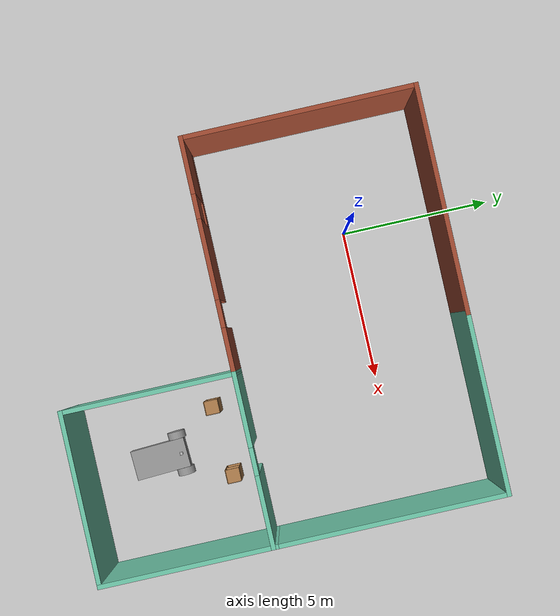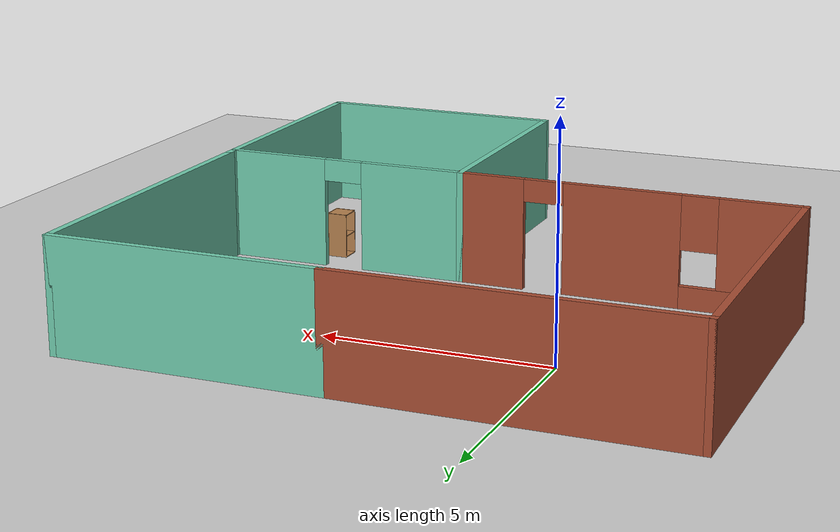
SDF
<sdf version="1.6">
 <world name="default">
  <model name="ground_plane">
   <static>1</static>
   <link name="link">
    <collision name="collision">
     <geometry><plane><normal>0 0 1</normal><size>100 100</size></plane></geometry>
     <surface>
      <contact><collide_bitmask>65535</collide_bitmask></contact>
      <friction><ode><mu>100</mu><mu2>50</mu2></ode></friction>
     </surface>
    </collision>
    <visual name="visual">
     <cast_shadows>0</cast_shadows>
     <geometry><plane><normal>0 0 1</normal><size>100 100</size></plane></geometry>
     <material>
      <script><uri>file://media/materials/scripts/gazebo.material</uri><name>Gazebo/Grey</name></script>
     </material>
    </visual>
   </link>
  </model>
  <model name="Building">
   <link name="Wall_0">
    <pose>-2.925 6.6 0 0 -0 0</pose>
    <visual name="Wall_0_Visual">
     <pose>0 0 1.25 0 -0 0</pose>
     <geometry><box><size>7.5 0.15 2.5</size></box></geometry>
     <material>
      <script><uri>file://media/materials/scripts/gazebo.material</uri><name>Gazebo/Bricks</name></script>
      <ambient>1 1 1 1</ambient>
     </material>
     <meta><layer>0</layer></meta>
    </visual>
    <collision name="Wall_0_Collision">
     <pose>0 0 1.25 0 -0 0</pose>
     <geometry><box><size>7.5 0.15 2.5</size></box></geometry>
     <surface>
      <friction>
       <ode><mu>1</mu><mu2>1</mu2><fdir1>0 0 0</fdir1><slip1>0</slip1><slip2>0</slip2></ode>
       <torsional>
        <coefficient>1</coefficient>
        <patch_radius>0</patch_radius>
        <surface_radius>0</surface_radius>
        <use_patch_radius>1</use_patch_radius>
        <ode><slip>0</slip></ode>
       </torsional>
      </friction>
      <bounce><restitution_coefficient>0</restitution_coefficient><threshold>1e+06</threshold></bounce>
      <contact>
       <collide_without_contact>0</collide_without_contact>
       <collide_without_contact_bitmask>1</collide_without_contact_bitmask>
       <collide_bitmask>1</collide_bitmask>
       <ode>
        <soft_cfm>0</soft_cfm>
        <soft_erp>0.2</soft_erp>
        <kp>1e+13</kp>
        <kd>1</kd>
        <max_vel>0.01</max_vel>
        <min_depth>0</min_depth>
       </ode>
       <bullet>
        <split_impulse>1</split_impulse>
        <split_impulse_penetration_threshold>-0.01</split_impulse_penetration_threshold>
        <soft_cfm>0</soft_cfm>
        <soft_erp>0.2</soft_erp>
        <kp>1e+13</kp>
        <kd>1</kd>
       </bullet>
      </contact>
     </surface>
    </collision>
   </link>
   <link name="Wall_1">
    <pose>3.675 6.6 0 0 -0 0</pose>
    <visual name="Wall_1_Visual">
     <pose>0 0 1.25 0 -0 0</pose>
     <geometry><box><size>6 0.15 2.5</size></box></geometry>
     <material>
      <script><uri>file://media/materials/scripts/gazebo.material</uri><name>Gazebo/Grey</name></script>
      <ambient>0.435294 0.796078 0.67451 1</ambient>
     </material>
     <meta><layer>0</layer></meta>
    </visual>
    <collision name="Wall_1_Collision">
     <pose>0 0 1.25 0 -0 0</pose>
     <geometry><box><size>6 0.15 2.5</size></box></geometry>
     <surface>
      <friction>
       <ode><mu>1</mu><mu2>1</mu2><fdir1>0 0 0</fdir1><slip1>0</slip1><slip2>0</slip2></ode>
       <torsional>
        <coefficient>1</coefficient>
        <patch_radius>0</patch_radius>
        <surface_radius>0</surface_radius>
        <use_patch_radius>1</use_patch_radius>
        <ode><slip>0</slip></ode>
       </torsional>
      </friction>
      <bounce><restitution_coefficient>0</restitution_coefficient><threshold>1e+06</threshold></bounce>
      <contact>
       <collide_without_contact>0</collide_without_contact>
       <collide_without_contact_bitmask>1</collide_without_contact_bitmask>
       <collide_bitmask>1</collide_bitmask>
       <ode>
        <soft_cfm>0</soft_cfm>
        <soft_erp>0.2</soft_erp>
        <kp>1e+13</kp>
        <kd>1</kd>
        <max_vel>0.01</max_vel>
        <min_depth>0</min_depth>
       </ode>
       <bullet>
        <split_impulse>1</split_impulse>
        <split_impulse_penetration_threshold>-0.01</split_impulse_penetration_threshold>
        <soft_cfm>0</soft_cfm>
        <soft_erp>0.2</soft_erp>
        <kp>1e+13</kp>
        <kd>1</kd>
       </bullet>
      </contact>
     </surface>
    </collision>
   </link>
   <link name="Wall_14">
    <pose>3.8 -1 0 0 -0 0</pose>
    <visual name="Wall_14_Visual_2">
     <pose>0.031268 0 2.25 0 -0 0</pose>
     <geometry><box><size>0.9 0.15 0.5</size></box></geometry>
     <material>
      <script><uri>file://media/materials/scripts/gazebo.material</uri><name>Gazebo/Grey</name></script>
      <ambient>0.435294 0.796078 0.67451 1</ambient>
     </material>
     <meta><layer>0</layer></meta>
    </visual>
    <visual name="Wall_14_Visual_0">
     <pose>-1.64687 0 1.25 0 -0 0</pose>
     <geometry><box><size>2.45627 0.15 2.5</size></box></geometry>
     <material>
      <script><uri>file://media/materials/scripts/gazebo.material</uri><name>Gazebo/Grey</name></script>
      <ambient>0.435294 0.796078 0.67451 1</ambient>
     </material>
     <meta><layer>0</layer></meta>
    </visual>
    <visual name="Wall_14_Visual_1">
     <pose>1.67813 0 1.25 0 -0 0</pose>
     <geometry><box><size>2.39373 0.15 2.5</size></box></geometry>
     <material>
      <script><uri>file://media/materials/scripts/gazebo.material</uri><name>Gazebo/Grey</name></script>
      <ambient>0.435294 0.796078 0.67451 1</ambient>
     </material>
     <meta><layer>0</layer></meta>
    </visual>
    <collision name="Wall_14_Collision_0">
     <pose>-1.64687 0 1.25 0 -0 0</pose>
     <geometry><box><size>2.45627 0.15 2.5</size></box></geometry>
     <surface>
      <friction>
       <ode><mu>1</mu><mu2>1</mu2><fdir1>0 0 0</fdir1><slip1>0</slip1><slip2>0</slip2></ode>
       <torsional>
        <coefficient>1</coefficient>
        <patch_radius>0</patch_radius>
        <surface_radius>0</surface_radius>
        <use_patch_radius>1</use_patch_radius>
        <ode><slip>0</slip></ode>
       </torsional>
      </friction>
      <bounce><restitution_coefficient>0</restitution_coefficient><threshold>1e+06</threshold></bounce>
      <contact>
       <collide_without_contact>0</collide_without_contact>
       <collide_without_contact_bitmask>1</collide_without_contact_bitmask>
       <collide_bitmask>1</collide_bitmask>
       <ode>
        <soft_cfm>0</soft_cfm>
        <soft_erp>0.2</soft_erp>
        <kp>1e+13</kp>
        <kd>1</kd>
        <max_vel>0.01</max_vel>
        <min_depth>0</min_depth>
       </ode>
       <bullet>
        <split_impulse>1</split_impulse>
        <split_impulse_penetration_threshold>-0.01</split_impulse_penetration_threshold>
        <soft_cfm>0</soft_cfm>
        <soft_erp>0.2</soft_erp>
        <kp>1e+13</kp>
        <kd>1</kd>
       </bullet>
      </contact>
     </surface>
    </collision>
    <collision name="Wall_14_Collision_1">
     <pose>1.67813 0 1.25 0 -0 0</pose>
     <geometry><box><size>2.39373 0.15 2.5</size></box></geometry>
     <surface>
      <friction>
       <ode><mu>1</mu><mu2>1</mu2><fdir1>0 0 0</fdir1><slip1>0</slip1><slip2>0</slip2></ode>
       <torsional>
        <coefficient>1</coefficient>
        <patch_radius>0</patch_radius>
        <surface_radius>0</surface_radius>
        <use_patch_radius>1</use_patch_radius>
        <ode><slip>0</slip></ode>
       </torsional>
      </friction>
      <bounce><restitution_coefficient>0</restitution_coefficient><threshold>1e+06</threshold></bounce>
      <contact>
       <collide_without_contact>0</collide_without_contact>
       <collide_without_contact_bitmask>1</collide_without_contact_bitmask>
       <collide_bitmask>1</collide_bitmask>
       <ode>
        <soft_cfm>0</soft_cfm>
        <soft_erp>0.2</soft_erp>
        <kp>1e+13</kp>
        <kd>1</kd>
        <max_vel>0.01</max_vel>
        <min_depth>0</min_depth>
       </ode>
       <bullet>
        <split_impulse>1</split_impulse>
        <split_impulse_penetration_threshold>-0.01</split_impulse_penetration_threshold>
        <soft_cfm>0</soft_cfm>
        <soft_erp>0.2</soft_erp>
        <kp>1e+13</kp>
        <kd>1</kd>
       </bullet>
      </contact>
     </surface>
    </collision>
    <collision name="Wall_14_Collision_2">
     <pose>0.031268 0 2.25 0 -0 0</pose>
     <geometry><box><size>0.9 0.15 0.5</size></box></geometry>
     <surface>
      <friction>
       <ode><mu>1</mu><mu2>1</mu2><fdir1>0 0 0</fdir1><slip1>0</slip1><slip2>0</slip2></ode>
       <torsional>
        <coefficient>1</coefficient>
        <patch_radius>0</patch_radius>
        <surface_radius>0</surface_radius>
        <use_patch_radius>1</use_patch_radius>
        <ode><slip>0</slip></ode>
       </torsional>
      </friction>
      <bounce><restitution_coefficient>0</restitution_coefficient><threshold>1e+06</threshold></bounce>
      <contact>
       <collide_without_contact>0</collide_without_contact>
       <collide_without_contact_bitmask>1</collide_without_contact_bitmask>
       <collide_bitmask>1</collide_bitmask>
       <ode>
        <soft_cfm>0</soft_cfm>
        <soft_erp>0.2</soft_erp>
        <kp>1e+13</kp>
        <kd>1</kd>
        <max_vel>0.01</max_vel>
        <min_depth>0</min_depth>
       </ode>
       <bullet>
        <split_impulse>1</split_impulse>
        <split_impulse_penetration_threshold>-0.01</split_impulse_penetration_threshold>
        <soft_cfm>0</soft_cfm>
        <soft_erp>0.2</soft_erp>
        <kp>1e+13</kp>
        <kd>1</kd>
       </bullet>
      </contact>
     </surface>
    </collision>
   </link>
   <link name="Wall_2">
    <pose>6.6 2.925 0 0 0 -1.5708</pose>
    <visual name="Wall_2_Visual">
     <pose>0 0 1.25 0 -0 0</pose>
     <geometry><box><size>7.5 0.15 2.5</size></box></geometry>
     <material>
      <script><uri>file://media/materials/scripts/gazebo.material</uri><name>Gazebo/Grey</name></script>
      <ambient>0.435294 0.796078 0.67451 1</ambient>
     </material>
     <meta><layer>0</layer></meta>
    </visual>
    <collision name="Wall_2_Collision">
     <pose>0 0 1.25 0 -0 0</pose>
     <geometry><box><size>7.5 0.15 2.5</size></box></geometry>
     <surface>
      <friction>
       <ode><mu>1</mu><mu2>1</mu2><fdir1>0 0 0</fdir1><slip1>0</slip1><slip2>0</slip2></ode>
       <torsional>
        <coefficient>1</coefficient>
        <patch_radius>0</patch_radius>
        <surface_radius>0</surface_radius>
        <use_patch_radius>1</use_patch_radius>
        <ode><slip>0</slip></ode>
       </torsional>
      </friction>
      <bounce><restitution_coefficient>0</restitution_coefficient><threshold>1e+06</threshold></bounce>
      <contact>
       <collide_without_contact>0</collide_without_contact>
       <collide_without_contact_bitmask>1</collide_without_contact_bitmask>
       <collide_bitmask>1</collide_bitmask>
       <ode>
        <soft_cfm>0</soft_cfm>
        <soft_erp>0.2</soft_erp>
        <kp>1e+13</kp>
        <kd>1</kd>
        <max_vel>0.01</max_vel>
        <min_depth>0</min_depth>
       </ode>
       <bullet>
        <split_impulse>1</split_impulse>
        <split_impulse_penetration_threshold>-0.01</split_impulse_penetration_threshold>
        <soft_cfm>0</soft_cfm>
        <soft_erp>0.2</soft_erp>
        <kp>1e+13</kp>
        <kd>1</kd>
       </bullet>
      </contact>
     </surface>
    </collision>
   </link>
   <link name="Wall_3">
    <pose>6.6 -3.675 0 0 0 -1.5708</pose>
    <visual name="Wall_3_Visual">
     <pose>0 0 1.25 0 -0 0</pose>
     <geometry><box><size>6 0.15 2.5</size></box></geometry>
     <material>
      <script><uri>file://media/materials/scripts/gazebo.material</uri><name>Gazebo/Grey</name></script>
      <ambient>0.435294 0.796078 0.67451 1</ambient>
     </material>
     <meta><layer>0</layer></meta>
    </visual>
    <collision name="Wall_3_Collision">
     <pose>0 0 1.25 0 -0 0</pose>
     <geometry><box><size>6 0.15 2.5</size></box></geometry>
     <surface>
      <friction>
       <ode><mu>1</mu><mu2>1</mu2><fdir1>0 0 0</fdir1><slip1>0</slip1><slip2>0</slip2></ode>
       <torsional>
        <coefficient>1</coefficient>
        <patch_radius>0</patch_radius>
        <surface_radius>0</surface_radius>
        <use_patch_radius>1</use_patch_radius>
        <ode><slip>0</slip></ode>
       </torsional>
      </friction>
      <bounce><restitution_coefficient>0</restitution_coefficient><threshold>1e+06</threshold></bounce>
      <contact>
       <collide_without_contact>0</collide_without_contact>
       <collide_without_contact_bitmask>1</collide_without_contact_bitmask>
       <collide_bitmask>1</collide_bitmask>
       <ode>
        <soft_cfm>0</soft_cfm>
        <soft_erp>0.2</soft_erp>
        <kp>1e+13</kp>
        <kd>1</kd>
        <max_vel>0.01</max_vel>
        <min_depth>0</min_depth>
       </ode>
       <bullet>
        <split_impulse>1</split_impulse>
        <split_impulse_penetration_threshold>-0.01</split_impulse_penetration_threshold>
        <soft_cfm>0</soft_cfm>
        <soft_erp>0.2</soft_erp>
        <kp>1e+13</kp>
        <kd>1</kd>
       </bullet>
      </contact>
     </surface>
    </collision>
   </link>
   <link name="Wall_4">
    <pose>3.8 -6.6 0 0 -0 3.14159</pose>
    <visual name="Wall_4_Visual">
     <pose>0 0 1.25 0 -0 0</pose>
     <geometry><box><size>5.75 0.15 2.5</size></box></geometry>
     <material>
      <script><uri>file://media/materials/scripts/gazebo.material</uri><name>Gazebo/Grey</name></script>
      <ambient>0.435294 0.796078 0.67451 1</ambient>
     </material>
     <meta><layer>0</layer></meta>
    </visual>
    <collision name="Wall_4_Collision">
     <pose>0 0 1.25 0 -0 0</pose>
     <geometry><box><size>5.75 0.15 2.5</size></box></geometry>
     <surface>
      <friction>
       <ode><mu>1</mu><mu2>1</mu2><fdir1>0 0 0</fdir1><slip1>0</slip1><slip2>0</slip2></ode>
       <torsional>
        <coefficient>1</coefficient>
        <patch_radius>0</patch_radius>
        <surface_radius>0</surface_radius>
        <use_patch_radius>1</use_patch_radius>
        <ode><slip>0</slip></ode>
       </torsional>
      </friction>
      <bounce><restitution_coefficient>0</restitution_coefficient><threshold>1e+06</threshold></bounce>
      <contact>
       <collide_without_contact>0</collide_without_contact>
       <collide_without_contact_bitmask>1</collide_without_contact_bitmask>
       <collide_bitmask>1</collide_bitmask>
       <ode>
        <soft_cfm>0</soft_cfm>
        <soft_erp>0.2</soft_erp>
        <kp>1e+13</kp>
        <kd>1</kd>
        <max_vel>0.01</max_vel>
        <min_depth>0</min_depth>
       </ode>
       <bullet>
        <split_impulse>1</split_impulse>
        <split_impulse_penetration_threshold>-0.01</split_impulse_penetration_threshold>
        <soft_cfm>0</soft_cfm>
        <soft_erp>0.2</soft_erp>
        <kp>1e+13</kp>
        <kd>1</kd>
       </bullet>
      </contact>
     </surface>
    </collision>
   </link>
   <link name="Wall_5">
    <pose>1 -3.8 0 0 -0 1.5708</pose>
    <visual name="Wall_5_Visual">
     <pose>0 0 1.25 0 -0 0</pose>
     <geometry><box><size>5.75 0.15 2.5</size></box></geometry>
     <material>
      <script><uri>file://media/materials/scripts/gazebo.material</uri><name>Gazebo/Grey</name></script>
      <ambient>0.435294 0.796078 0.67451 1</ambient>
     </material>
     <meta><layer>0</layer></meta>
    </visual>
    <collision name="Wall_5_Collision">
     <pose>0 0 1.25 0 -0 0</pose>
     <geometry><box><size>5.75 0.15 2.5</size></box></geometry>
     <surface>
      <friction>
       <ode><mu>1</mu><mu2>1</mu2><fdir1>0 0 0</fdir1><slip1>0</slip1><slip2>0</slip2></ode>
       <torsional>
        <coefficient>1</coefficient>
        <patch_radius>0</patch_radius>
        <surface_radius>0</surface_radius>
        <use_patch_radius>1</use_patch_radius>
        <ode><slip>0</slip></ode>
       </torsional>
      </friction>
      <bounce><restitution_coefficient>0</restitution_coefficient><threshold>1e+06</threshold></bounce>
      <contact>
       <collide_without_contact>0</collide_without_contact>
       <collide_without_contact_bitmask>1</collide_without_contact_bitmask>
       <collide_bitmask>1</collide_bitmask>
       <ode>
        <soft_cfm>0</soft_cfm>
        <soft_erp>0.2</soft_erp>
        <kp>1e+13</kp>
        <kd>1</kd>
        <max_vel>0.01</max_vel>
        <min_depth>0</min_depth>
       </ode>
       <bullet>
        <split_impulse>1</split_impulse>
        <split_impulse_penetration_threshold>-0.01</split_impulse_penetration_threshold>
        <soft_cfm>0</soft_cfm>
        <soft_erp>0.2</soft_erp>
        <kp>1e+13</kp>
        <kd>1</kd>
       </bullet>
      </contact>
     </surface>
    </collision>
   </link>
   <link name="Wall_6">
    <pose>-2.8 -1 0 0 -0 3.14159</pose>
    <visual name="Wall_6_Visual_0">
     <pose>-3.0921 0 1.25 0 -0 0</pose>
     <geometry><box><size>1.56581 0.15 2.5</size></box></geometry>
     <material>
      <script><uri>file://media/materials/scripts/gazebo.material</uri><name>Gazebo/Bricks</name></script>
      <ambient>1 1 1 1</ambient>
     </material>
     <meta><layer>0</layer></meta>
    </visual>
    <visual name="Wall_6_Visual_1">
     <pose>-0.105844 0 1.25 0 -0 0</pose>
     <geometry><box><size>2.6067 0.15 2.5</size></box></geometry>
     <material>
      <script><uri>file://media/materials/scripts/gazebo.material</uri><name>Gazebo/Bricks</name></script>
      <ambient>1 1 1 1</ambient>
     </material>
     <meta><layer>0</layer></meta>
    </visual>
    <visual name="Wall_6_Visual_2">
     <pose>2.53625 0 0.25 0 -0 0</pose>
     <geometry><box><size>2.6775 0.15 0.5</size></box></geometry>
     <material>
      <script><uri>file://media/materials/scripts/gazebo.material</uri><name>Gazebo/Bricks</name></script>
      <ambient>1 1 1 1</ambient>
     </material>
     <meta><layer>0</layer></meta>
    </visual>
    <visual name="Wall_6_Visual_3">
     <pose>2.93625 0 1.5 0 -0 0</pose>
     <geometry><box><size>1.8775 0.15 2</size></box></geometry>
     <material>
      <script><uri>file://media/materials/scripts/gazebo.material</uri><name>Gazebo/Bricks</name></script>
      <ambient>1 1 1 1</ambient>
     </material>
     <meta><layer>0</layer></meta>
    </visual>
    <visual name="Wall_6_Visual_4">
     <pose>1.5975 0 1.9 0 -0 0</pose>
     <geometry><box><size>0.8 0.15 1.2</size></box></geometry>
     <material>
      <script><uri>file://media/materials/scripts/gazebo.material</uri><name>Gazebo/Bricks</name></script>
      <ambient>1 1 1 1</ambient>
     </material>
     <meta><layer>0</layer></meta>
    </visual>
    <visual name="Wall_6_Visual_5">
     <pose>-1.85919 0 2.25 0 -0 0</pose>
     <geometry><box><size>0.9 0.15 0.5</size></box></geometry>
     <material>
      <script><uri>file://media/materials/scripts/gazebo.material</uri><name>Gazebo/Bricks</name></script>
      <ambient>1 1 1 1</ambient>
     </material>
     <meta><layer>0</layer></meta>
    </visual>
    <collision name="Wall_6_Collision_0">
     <pose>-3.0921 0 1.25 0 -0 0</pose>
     <geometry><box><size>1.56581 0.15 2.5</size></box></geometry>
     <surface>
      <friction>
       <ode><mu>1</mu><mu2>1</mu2><fdir1>0 0 0</fdir1><slip1>0</slip1><slip2>0</slip2></ode>
       <torsional>
        <coefficient>1</coefficient>
        <patch_radius>0</patch_radius>
        <surface_radius>0</surface_radius>
        <use_patch_radius>1</use_patch_radius>
        <ode><slip>0</slip></ode>
       </torsional>
      </friction>
      <bounce><restitution_coefficient>0</restitution_coefficient><threshold>1e+06</threshold></bounce>
      <contact>
       <collide_without_contact>0</collide_without_contact>
       <collide_without_contact_bitmask>1</collide_without_contact_bitmask>
       <collide_bitmask>1</collide_bitmask>
       <ode>
        <soft_cfm>0</soft_cfm>
        <soft_erp>0.2</soft_erp>
        <kp>1e+13</kp>
        <kd>1</kd>
        <max_vel>0.01</max_vel>
        <min_depth>0</min_depth>
       </ode>
       <bullet>
        <split_impulse>1</split_impulse>
        <split_impulse_penetration_threshold>-0.01</split_impulse_penetration_threshold>
        <soft_cfm>0</soft_cfm>
        <soft_erp>0.2</soft_erp>
        <kp>1e+13</kp>
        <kd>1</kd>
       </bullet>
      </contact>
     </surface>
    </collision>
    <collision name="Wall_6_Collision_1">
     <pose>-0.105844 0 1.25 0 -0 0</pose>
     <geometry><box><size>2.6067 0.15 2.5</size></box></geometry>
     <surface>
      <friction>
       <ode><mu>1</mu><mu2>1</mu2><fdir1>0 0 0</fdir1><slip1>0</slip1><slip2>0</slip2></ode>
       <torsional>
        <coefficient>1</coefficient>
        <patch_radius>0</patch_radius>
        <surface_radius>0</surface_radius>
        <use_patch_radius>1</use_patch_radius>
        <ode><slip>0</slip></ode>
       </torsional>
      </friction>
      <bounce><restitution_coefficient>0</restitution_coefficient><threshold>1e+06</threshold></bounce>
      <contact>
       <collide_without_contact>0</collide_without_contact>
       <collide_without_contact_bitmask>1</collide_without_contact_bitmask>
       <collide_bitmask>1</collide_bitmask>
       <ode>
        <soft_cfm>0</soft_cfm>
        <soft_erp>0.2</soft_erp>
        <kp>1e+13</kp>
        <kd>1</kd>
        <max_vel>0.01</max_vel>
        <min_depth>0</min_depth>
       </ode>
       <bullet>
        <split_impulse>1</split_impulse>
        <split_impulse_penetration_threshold>-0.01</split_impulse_penetration_threshold>
        <soft_cfm>0</soft_cfm>
        <soft_erp>0.2</soft_erp>
        <kp>1e+13</kp>
        <kd>1</kd>
       </bullet>
      </contact>
     </surface>
    </collision>
    <collision name="Wall_6_Collision_2">
     <pose>2.53625 0 0.25 0 -0 0</pose>
     <geometry><box><size>2.6775 0.15 0.5</size></box></geometry>
     <surface>
      <friction>
       <ode><mu>1</mu><mu2>1</mu2><fdir1>0 0 0</fdir1><slip1>0</slip1><slip2>0</slip2></ode>
       <torsional>
        <coefficient>1</coefficient>
        <patch_radius>0</patch_radius>
        <surface_radius>0</surface_radius>
        <use_patch_radius>1</use_patch_radius>
        <ode><slip>0</slip></ode>
       </torsional>
      </friction>
      <bounce><restitution_coefficient>0</restitution_coefficient><threshold>1e+06</threshold></bounce>
      <contact>
       <collide_without_contact>0</collide_without_contact>
       <collide_without_contact_bitmask>1</collide_without_contact_bitmask>
       <collide_bitmask>1</collide_bitmask>
       <ode>
        <soft_cfm>0</soft_cfm>
        <soft_erp>0.2</soft_erp>
        <kp>1e+13</kp>
        <kd>1</kd>
        <max_vel>0.01</max_vel>
        <min_depth>0</min_depth>
       </ode>
       <bullet>
        <split_impulse>1</split_impulse>
        <split_impulse_penetration_threshold>-0.01</split_impulse_penetration_threshold>
        <soft_cfm>0</soft_cfm>
        <soft_erp>0.2</soft_erp>
        <kp>1e+13</kp>
        <kd>1</kd>
       </bullet>
      </contact>
     </surface>
    </collision>
    <collision name="Wall_6_Collision_4">
     <pose>1.5975 0 1.9 0 -0 0</pose>
     <geometry><box><size>0.8 0.15 1.2</size></box></geometry>
     <surface>
      <friction>
       <ode><mu>1</mu><mu2>1</mu2><fdir1>0 0 0</fdir1><slip1>0</slip1><slip2>0</slip2></ode>
       <torsional>
        <coefficient>1</coefficient>
        <patch_radius>0</patch_radius>
        <surface_radius>0</surface_radius>
        <use_patch_radius>1</use_patch_radius>
        <ode><slip>0</slip></ode>
       </torsional>
      </friction>
      <bounce><restitution_coefficient>0</restitution_coefficient><threshold>1e+06</threshold></bounce>
      <contact>
       <collide_without_contact>0</collide_without_contact>
       <collide_without_contact_bitmask>1</collide_without_contact_bitmask>
       <collide_bitmask>1</collide_bitmask>
       <ode>
        <soft_cfm>0</soft_cfm>
        <soft_erp>0.2</soft_erp>
        <kp>1e+13</kp>
        <kd>1</kd>
        <max_vel>0.01</max_vel>
        <min_depth>0</min_depth>
       </ode>
       <bullet>
        <split_impulse>1</split_impulse>
        <split_impulse_penetration_threshold>-0.01</split_impulse_penetration_threshold>
        <soft_cfm>0</soft_cfm>
        <soft_erp>0.2</soft_erp>
        <kp>1e+13</kp>
        <kd>1</kd>
       </bullet>
      </contact>
     </surface>
    </collision>
    <collision name="Wall_6_Collision_3">
     <pose>2.93625 0 1.5 0 -0 0</pose>
     <geometry><box><size>1.8775 0.15 2</size></box></geometry>
     <surface>
      <friction>
       <ode><mu>1</mu><mu2>1</mu2><fdir1>0 0 0</fdir1><slip1>0</slip1><slip2>0</slip2></ode>
       <torsional>
        <coefficient>1</coefficient>
        <patch_radius>0</patch_radius>
        <surface_radius>0</surface_radius>
        <use_patch_radius>1</use_patch_radius>
        <ode><slip>0</slip></ode>
       </torsional>
      </friction>
      <bounce><restitution_coefficient>0</restitution_coefficient><threshold>1e+06</threshold></bounce>
      <contact>
       <collide_without_contact>0</collide_without_contact>
       <collide_without_contact_bitmask>1</collide_without_contact_bitmask>
       <collide_bitmask>1</collide_bitmask>
       <ode>
        <soft_cfm>0</soft_cfm>
        <soft_erp>0.2</soft_erp>
        <kp>1e+13</kp>
        <kd>1</kd>
        <max_vel>0.01</max_vel>
        <min_depth>0</min_depth>
       </ode>
       <bullet>
        <split_impulse>1</split_impulse>
        <split_impulse_penetration_threshold>-0.01</split_impulse_penetration_threshold>
        <soft_cfm>0</soft_cfm>
        <soft_erp>0.2</soft_erp>
        <kp>1e+13</kp>
        <kd>1</kd>
       </bullet>
      </contact>
     </surface>
    </collision>
    <collision name="Wall_6_Collision_5">
     <pose>-1.85919 0 2.25 0 -0 0</pose>
     <geometry><box><size>0.9 0.15 0.5</size></box></geometry>
     <surface>
      <friction>
       <ode><mu>1</mu><mu2>1</mu2><fdir1>0 0 0</fdir1><slip1>0</slip1><slip2>0</slip2></ode>
       <torsional>
        <coefficient>1</coefficient>
        <patch_radius>0</patch_radius>
        <surface_radius>0</surface_radius>
        <use_patch_radius>1</use_patch_radius>
        <ode><slip>0</slip></ode>
       </torsional>
      </friction>
      <bounce><restitution_coefficient>0</restitution_coefficient><threshold>1e+06</threshold></bounce>
      <contact>
       <collide_without_contact>0</collide_without_contact>
       <collide_without_contact_bitmask>1</collide_without_contact_bitmask>
       <collide_bitmask>1</collide_bitmask>
       <ode>
        <soft_cfm>0</soft_cfm>
        <soft_erp>0.2</soft_erp>
        <kp>1e+13</kp>
        <kd>1</kd>
        <max_vel>0.01</max_vel>
        <min_depth>0</min_depth>
       </ode>
       <bullet>
        <split_impulse>1</split_impulse>
        <split_impulse_penetration_threshold>-0.01</split_impulse_penetration_threshold>
        <soft_cfm>0</soft_cfm>
        <soft_erp>0.2</soft_erp>
        <kp>1e+13</kp>
        <kd>1</kd>
       </bullet>
      </contact>
     </surface>
    </collision>
   </link>
   <link name="Wall_7">
    <pose>-6.6 2.8 0 0 -0 1.5708</pose>
    <visual name="Wall_7_Visual">
     <pose>0 0 1.25 0 -0 0</pose>
     <geometry><box><size>7.75 0.15 2.5</size></box></geometry>
     <material>
      <script><uri>file://media/materials/scripts/gazebo.material</uri><name>Gazebo/Bricks</name></script>
      <ambient>1 1 1 1</ambient>
     </material>
     <meta><layer>0</layer></meta>
    </visual>
    <collision name="Wall_7_Collision">
     <pose>0 0 1.25 0 -0 0</pose>
     <geometry><box><size>7.75 0.15 2.5</size></box></geometry>
     <surface>
      <friction>
       <ode><mu>1</mu><mu2>1</mu2><fdir1>0 0 0</fdir1><slip1>0</slip1><slip2>0</slip2></ode>
       <torsional>
        <coefficient>1</coefficient>
        <patch_radius>0</patch_radius>
        <surface_radius>0</surface_radius>
        <use_patch_radius>1</use_patch_radius>
        <ode><slip>0</slip></ode>
       </torsional>
      </friction>
      <bounce><restitution_coefficient>0</restitution_coefficient><threshold>1e+06</threshold></bounce>
      <contact>
       <collide_without_contact>0</collide_without_contact>
       <collide_without_contact_bitmask>1</collide_without_contact_bitmask>
       <collide_bitmask>1</collide_bitmask>
       <ode>
        <soft_cfm>0</soft_cfm>
        <soft_erp>0.2</soft_erp>
        <kp>1e+13</kp>
        <kd>1</kd>
        <max_vel>0.01</max_vel>
        <min_depth>0</min_depth>
       </ode>
       <bullet>
        <split_impulse>1</split_impulse>
        <split_impulse_penetration_threshold>-0.01</split_impulse_penetration_threshold>
        <soft_cfm>0</soft_cfm>
        <soft_erp>0.2</soft_erp>
        <kp>1e+13</kp>
        <kd>1</kd>
       </bullet>
      </contact>
     </surface>
    </collision>
   </link>
   <link name="Window_1">
    <pose>3.43359 -6.73734 0.5 0 -0 0</pose>
    <visual name="Window_1_Visual">
     <pose>0 0 0.4 0 -0 0</pose>
     <geometry><box><size>0.8 0.17 0.8</size></box></geometry>
     <material>
      <script><uri>file://media/materials/scripts/gazebo.material</uri><name>Gazebo/Grey</name></script>
     </material>
    </visual>
    <collision name="Window_1_Collision">
     <pose>0 0 0.4 0 -0 0</pose>
     <geometry><box><size>0.8 0.17 0.8</size></box></geometry>
     <surface>
      <friction>
       <ode><mu>1</mu><mu2>1</mu2><fdir1>0 0 0</fdir1><slip1>0</slip1><slip2>0</slip2></ode>
       <torsional>
        <coefficient>1</coefficient>
        <patch_radius>0</patch_radius>
        <surface_radius>0</surface_radius>
        <use_patch_radius>1</use_patch_radius>
        <ode><slip>0</slip></ode>
       </torsional>
      </friction>
      <bounce><restitution_coefficient>0</restitution_coefficient><threshold>1e+06</threshold></bounce>
      <contact>
       <collide_without_contact>0</collide_without_contact>
       <collide_without_contact_bitmask>1</collide_without_contact_bitmask>
       <collide_bitmask>1</collide_bitmask>
       <ode>
        <soft_cfm>0</soft_cfm>
        <soft_erp>0.2</soft_erp>
        <kp>1e+13</kp>
        <kd>1</kd>
        <max_vel>0.01</max_vel>
        <min_depth>0</min_depth>
       </ode>
       <bullet>
        <split_impulse>1</split_impulse>
        <split_impulse_penetration_threshold>-0.01</split_impulse_penetration_threshold>
        <soft_cfm>0</soft_cfm>
        <soft_erp>0.2</soft_erp>
        <kp>1e+13</kp>
        <kd>1</kd>
       </bullet>
      </contact>
     </surface>
    </collision>
   </link>
   <static>1</static>
   <pose>2.78516 -3.53369 0 0 -0 0</pose>
  </model>
  <model name="Car_0">
   <link name="link_0">
    <inertial>
     <mass>0.688833</mass>
     <inertia>
      <ixx>0.0653771</ixx>
      <ixy>0</ixy>
      <ixz>0</ixz>
      <iyy>0.204042</iyy>
      <iyz>0</iyz>
      <izz>0.25347</izz>
     </inertia>
     <pose>0 0 0.2 0 -0 0</pose>
    </inertial>
    <pose>-0.006569 -0.057662 0.4 0 -0 0</pose>
    <visual name="visual">
     <geometry><box><size>1.84815 1 0.372719</size></box></geometry>
     <material>
      <lighting>1</lighting>
      <script><uri>file://media/materials/scripts/gazebo.material</uri><name>Gazebo/Grey</name></script>
      <shader type="vertex"><normal_map>__default__</normal_map></shader>
      <ambient>0.3 0.3 0.3 1</ambient>
      <diffuse>0.7 0.7 0.7 1</diffuse>
      <specular>0.01 0.01 0.01 1</specular>
      <emissive>0 0 0 1</emissive>
     </material>
    </visual>
    <collision name="collision">
     <geometry><box><size>1.84815 1 0.372719</size></box></geometry>
     <surface>
      <friction>
       <ode><mu>1</mu><mu2>1</mu2><fdir1>0 0 0</fdir1><slip1>0</slip1><slip2>0</slip2></ode>
       <torsional>
        <coefficient>1</coefficient>
        <patch_radius>0</patch_radius>
        <surface_radius>0</surface_radius>
        <use_patch_radius>1</use_patch_radius>
        <ode><slip>0</slip></ode>
       </torsional>
      </friction>
      <bounce><restitution_coefficient>0</restitution_coefficient><threshold>1e+06</threshold></bounce>
      <contact>
       <collide_without_contact>0</collide_without_contact>
       <collide_without_contact_bitmask>1</collide_without_contact_bitmask>
       <collide_bitmask>1</collide_bitmask>
       <ode>
        <soft_cfm>0</soft_cfm>
        <soft_erp>0.2</soft_erp>
        <kp>1e+13</kp>
        <kd>1</kd>
        <max_vel>0.01</max_vel>
        <min_depth>0</min_depth>
       </ode>
       <bullet>
        <split_impulse>1</split_impulse>
        <split_impulse_penetration_threshold>-0.01</split_impulse_penetration_threshold>
        <soft_cfm>0</soft_cfm>
        <soft_erp>0.2</soft_erp>
        <kp>1e+13</kp>
        <kd>1</kd>
       </bullet>
      </contact>
     </surface>
    </collision>
   </link>
   <link name="link_1">
    <inertial>
     <mass>1</mass>
     <inertia><ixx>0.145833</ixx><ixy>0</ixy><ixz>0</ixz><iyy>0.145833</iyy><iyz>0</iyz><izz>0.125</izz></inertia>
    </inertial>
    <pose>0.689747 -0.682691 0.3 1.5707 -0 0</pose>
    <visual name="visual">
     <geometry><cylinder><radius>0.3</radius><length>0.25</length></cylinder></geometry>
     <material>
      <lighting>1</lighting>
      <script><uri>file://media/materials/scripts/gazebo.material</uri><name>Gazebo/Grey</name></script>
      <shader type="vertex"><normal_map>__default__</normal_map></shader>
      <ambient>0.3 0.3 0.3 1</ambient>
      <diffuse>0.7 0.7 0.7 1</diffuse>
      <specular>0.01 0.01 0.01 1</specular>
      <emissive>0 0 0 1</emissive>
     </material>
    </visual>
    <collision name="collision">
     <geometry><cylinder><radius>0.3</radius><length>0.25</length></cylinder></geometry>
     <surface>
      <friction>
       <ode><mu>1</mu><mu2>1</mu2><fdir1>0 0 0</fdir1><slip1>0</slip1><slip2>0</slip2></ode>
       <torsional>
        <coefficient>1</coefficient>
        <patch_radius>0</patch_radius>
        <surface_radius>0</surface_radius>
        <use_patch_radius>1</use_patch_radius>
        <ode><slip>0</slip></ode>
       </torsional>
      </friction>
      <bounce><restitution_coefficient>0</restitution_coefficient><threshold>1e+06</threshold></bounce>
      <contact>
       <collide_without_contact>0</collide_without_contact>
       <collide_without_contact_bitmask>1</collide_without_contact_bitmask>
       <collide_bitmask>1</collide_bitmask>
       <ode>
        <soft_cfm>0</soft_cfm>
        <soft_erp>0.2</soft_erp>
        <kp>1e+13</kp>
        <kd>1</kd>
        <max_vel>0.01</max_vel>
        <min_depth>0</min_depth>
       </ode>
       <bullet>
        <split_impulse>1</split_impulse>
        <split_impulse_penetration_threshold>-0.01</split_impulse_penetration_threshold>
        <soft_cfm>0</soft_cfm>
        <soft_erp>0.2</soft_erp>
        <kp>1e+13</kp>
        <kd>1</kd>
       </bullet>
      </contact>
     </surface>
    </collision>
   </link>
   <link name="link_1_clone">
    <inertial>
     <mass>1</mass>
     <inertia><ixx>0.145833</ixx><ixy>0</ixy><ixz>0</ixz><iyy>0.145833</iyy><iyz>0</iyz><izz>0.125</izz></inertia>
    </inertial>
    <pose>0.689747 0.567367 0.3 1.5707 -0 0</pose>
    <visual name="visual">
     <geometry><cylinder><radius>0.3</radius><length>0.25</length></cylinder></geometry>
     <material>
      <lighting>1</lighting>
      <script><uri>file://media/materials/scripts/gazebo.material</uri><name>Gazebo/Grey</name></script>
      <shader type="vertex"><normal_map>__default__</normal_map></shader>
      <ambient>0.3 0.3 0.3 1</ambient>
      <diffuse>0.7 0.7 0.7 1</diffuse>
      <specular>0.01 0.01 0.01 1</specular>
      <emissive>0 0 0 1</emissive>
     </material>
    </visual>
    <collision name="collision">
     <geometry><cylinder><radius>0.3</radius><length>0.25</length></cylinder></geometry>
     <surface>
      <friction>
       <ode><mu>1</mu><mu2>1</mu2><fdir1>0 0 0</fdir1><slip1>0</slip1><slip2>0</slip2></ode>
       <torsional>
        <coefficient>1</coefficient>
        <patch_radius>0</patch_radius>
        <surface_radius>0</surface_radius>
        <use_patch_radius>1</use_patch_radius>
        <ode><slip>0</slip></ode>
       </torsional>
      </friction>
      <bounce><restitution_coefficient>0</restitution_coefficient><threshold>1e+06</threshold></bounce>
      <contact>
       <collide_without_contact>0</collide_without_contact>
       <collide_without_contact_bitmask>1</collide_without_contact_bitmask>
       <collide_bitmask>1</collide_bitmask>
       <ode>
        <soft_cfm>0</soft_cfm>
        <soft_erp>0.2</soft_erp>
        <kp>1e+13</kp>
        <kd>1</kd>
        <max_vel>0.01</max_vel>
        <min_depth>0</min_depth>
       </ode>
       <bullet>
        <split_impulse>1</split_impulse>
        <split_impulse_penetration_threshold>-0.01</split_impulse_penetration_threshold>
        <soft_cfm>0</soft_cfm>
        <soft_erp>0.2</soft_erp>
        <kp>1e+13</kp>
        <kd>1</kd>
       </bullet>
      </contact>
     </surface>
    </collision>
   </link>
   <link name="link_2">
    <inertial>
     <mass>1</mass>
     <inertia><ixx>0.1</ixx><ixy>0</ixy><ixz>0</ixz><iyy>0.1</iyy><iyz>0</iyz><izz>0.1</izz></inertia>
     <pose>0 0 0.2 0 -0 0</pose>
    </inertial>
    <pose>-0.802885 -0.057662 0.2 0 -0 0</pose>
    <visual name="visual">
     <geometry><sphere><radius>0.2</radius></sphere></geometry>
     <material>
      <lighting>1</lighting>
      <script><uri>file://media/materials/scripts/gazebo.material</uri><name>Gazebo/Grey</name></script>
      <shader type="vertex"><normal_map>__default__</normal_map></shader>
      <ambient>0.3 0.3 0.3 1</ambient>
      <diffuse>0.7 0.7 0.7 1</diffuse>
      <specular>0.01 0.01 0.01 1</specular>
      <emissive>0 0 0 1</emissive>
     </material>
    </visual>
    <collision name="collision">
     <geometry><sphere><radius>0.2</radius></sphere></geometry>
     <surface>
      <friction>
       <ode><mu>1</mu><mu2>1</mu2><fdir1>0 0 0</fdir1><slip1>0</slip1><slip2>0</slip2></ode>
       <torsional>
        <coefficient>1</coefficient>
        <patch_radius>0</patch_radius>
        <surface_radius>0</surface_radius>
        <use_patch_radius>1</use_patch_radius>
        <ode><slip>0</slip></ode>
       </torsional>
      </friction>
      <bounce><restitution_coefficient>0</restitution_coefficient><threshold>1e+06</threshold></bounce>
      <contact>
       <collide_without_contact>0</collide_without_contact>
       <collide_without_contact_bitmask>1</collide_without_contact_bitmask>
       <collide_bitmask>1</collide_bitmask>
       <ode>
        <soft_cfm>0</soft_cfm>
        <soft_erp>0.2</soft_erp>
        <kp>1e+13</kp>
        <kd>1</kd>
        <max_vel>0.01</max_vel>
        <min_depth>0</min_depth>
       </ode>
       <bullet>
        <split_impulse>1</split_impulse>
        <split_impulse_penetration_threshold>-0.01</split_impulse_penetration_threshold>
        <soft_cfm>0</soft_cfm>
        <soft_erp>0.2</soft_erp>
        <kp>1e+13</kp>
        <kd>1</kd>
       </bullet>
      </contact>
     </surface>
    </collision>
   </link>
   <model name="depth_camera">
    <link name="link">
     <pose>0 0 0.05 0 -0 0</pose>
     <inertial>
      <mass>0.1</mass>
      <inertia>
       <ixx>0.000166667</ixx>
       <iyy>0.000166667</iyy>
       <izz>0.000166667</izz>
       <ixy>0</ixy>
       <ixz>0</ixz>
       <iyz>0</iyz>
      </inertia>
     </inertial>
     <collision name="collision"><geometry><box><size>0.1 0.1 0.1</size></box></geometry></collision>
     <visual name="visual"><geometry><box><size>0.1 0.1 0.1</size></box></geometry></visual>
     <sensor name="camera" type="depth">
      <camera name="__default__">
       <horizontal_fov>1.047</horizontal_fov>
       <image><width>320</width><height>240</height></image>
       <clip><near>0.1</near><far>100</far></clip>
      </camera>
      <always_on>1</always_on>
      <update_rate>30</update_rate>
      <visualize>1</visualize>
     </sensor>
    </link>
    <pose>0.72309 -0.063391 0.522217 0 -0 0</pose>
   </model>
   <joint name="link_0_JOINT_0" type="revolute">
    <parent>link_0</parent>
    <child>link_1_clone</child>
    <axis>
     <xyz>0 0 1</xyz>
     <use_parent_model_frame>0</use_parent_model_frame>
     <limit>
      <lower>-1.79769e+308</lower>
      <upper>1.79769e+308</upper>
      <effort>-1</effort>
      <velocity>-1</velocity>
     </limit>
     <dynamics>
      <spring_reference>0</spring_reference>
      <spring_stiffness>0</spring_stiffness>
      <damping>0</damping>
     </dynamics>
    </axis>
    <physics>
     <ode><limit><cfm>0</cfm><erp>0.2</erp></limit><suspension><cfm>0</cfm><erp>0.2</erp></suspension></ode>
    </physics>
   </joint>
   <joint name="link_0_JOINT_1" type="revolute">
    <parent>link_0</parent>
    <child>link_1</child>
    <axis>
     <xyz>0 0 1</xyz>
     <use_parent_model_frame>0</use_parent_model_frame>
     <limit>
      <lower>-1.79769e+308</lower>
      <upper>1.79769e+308</upper>
      <effort>-1</effort>
      <velocity>-1</velocity>
     </limit>
     <dynamics>
      <spring_reference>0</spring_reference>
      <spring_stiffness>0</spring_stiffness>
      <damping>0</damping>
     </dynamics>
    </axis>
    <physics>
     <ode><limit><cfm>0</cfm><erp>0.2</erp></limit><suspension><cfm>0</cfm><erp>0.2</erp></suspension></ode>
    </physics>
   </joint>
   <joint name="link_0_JOINT_2" type="ball">
    <parent>link_0</parent>
    <child>link_2</child>
    <physics>
     <ode><limit><cfm>0</cfm><erp>0.2</erp></limit><suspension><cfm>0</cfm><erp>0.2</erp></suspension></ode>
    </physics>
   </joint>
   <joint name="link_0_JOINT_4" type="fixed">
    <parent>link_0</parent>
    <child>depth_camera::link</child>
    <physics>
     <ode><limit><cfm>0</cfm><erp>0.2</erp></limit><suspension><cfm>0</cfm><erp>0.2</erp></suspension></ode>
    </physics>
   </joint>
   <static>0</static>
   <plugin name="Follower" filename="libFollowerPlugin.so"/>
   <pose>6.03901 -7.73811 0 0 -0 1.61979</pose>
  </model>
  <model name="cabinet">
   <static>1</static>
   <link name="cabinet_bottom_plate">
    <inertial>
     <pose>0 0 -1 0 -0 0</pose>
     <inertia><ixx>2.05</ixx><ixy>0</ixy><ixz>0</ixz><iyy>2.05</iyy><iyz>0</iyz><izz>2.05</izz></inertia>
     <mass>25</mass>
    </inertial>
    <collision name="cabinet_bottom_plate_geom">
     <pose>0 0 0.01 0 -0 0</pose>
     <geometry><box><size>0.45 0.45 0.02</size></box></geometry>
    </collision>
    <visual name="cabinet_bottom_plate_geom_visual">
     <pose>0 0 0.01 0 -0 0</pose>
     <geometry><box><size>0.45 0.45 0.02</size></box></geometry>
     <material>
      <script><uri>file://media/materials/scripts/gazebo.material</uri><name>Gazebo/Wood</name></script>
     </material>
    </visual>
    <collision name="cabinet_bottom_plate_geom_cabinet_back_plate">
     <pose>0.235 0 0.51 0 -0 0</pose>
     <geometry><box><size>0.02 0.45 1.02</size></box></geometry>
    </collision>
    <visual name="cabinet_bottom_plate_geom_cabinet_back_plate_visual">
     <pose>0.235 0 0.51 0 -0 0</pose>
     <geometry><box><size>0.02 0.45 1.02</size></box></geometry>
     <material>
      <script><uri>file://media/materials/scripts/gazebo.material</uri><name>Gazebo/Wood</name></script>
     </material>
    </visual>
    <collision name="cabinet_bottom_plate_geom_cabinet_left_plate">
     <pose>0 0.235 0.51 0 -0 0</pose>
     <geometry><box><size>0.45 0.02 1.02</size></box></geometry>
    </collision>
    <visual name="cabinet_bottom_plate_geom_cabinet_left_plate_visual">
     <pose>0 0.235 0.51 0 -0 0</pose>
     <geometry><box><size>0.45 0.02 1.02</size></box></geometry>
     <material>
      <script><uri>file://media/materials/scripts/gazebo.material</uri><name>Gazebo/Wood</name></script>
     </material>
    </visual>
    <collision name="cabinet_bottom_plate_geom_cabinet_middle_plate">
     <pose>0 0 0.51 0 -0 0</pose>
     <geometry><box><size>0.45 0.45 0.02</size></box></geometry>
    </collision>
    <visual name="cabinet_bottom_plate_geom_cabinet_middle_plate_visual">
     <pose>0 0 0.51 0 -0 0</pose>
     <geometry><box><size>0.45 0.45 0.02</size></box></geometry>
     <material>
      <script><uri>file://media/materials/scripts/gazebo.material</uri><name>Gazebo/Wood</name></script>
     </material>
    </visual>
    <collision name="cabinet_bottom_plate_geom_cabinet_right_plate">
     <pose>0 -0.235 0.51 0 -0 0</pose>
     <geometry><box><size>0.45 0.02 1.02</size></box></geometry>
    </collision>
    <visual name="cabinet_bottom_plate_geom_cabinet_right_plate_visual">
     <pose>0 -0.235 0.51 0 -0 0</pose>
     <geometry><box><size>0.45 0.02 1.02</size></box></geometry>
     <material>
      <script><uri>file://media/materials/scripts/gazebo.material</uri><name>Gazebo/Wood</name></script>
     </material>
    </visual>
    <collision name="cabinet_bottom_plate_geom_cabinet_top_plate">
     <pose>0 0 1.01 0 -0 0</pose>
     <geometry><box><size>0.45 0.45 0.02</size></box></geometry>
    </collision>
    <visual name="cabinet_bottom_plate_geom_cabinet_top_plate_visual">
     <pose>0 0 1.01 0 -0 0</pose>
     <geometry><box><size>0.45 0.45 0.02</size></box></geometry>
     <material>
      <script><uri>file://media/materials/scripts/gazebo.material</uri><name>Gazebo/Wood</name></script>
     </material>
    </visual>
   </link>
   <pose>4.74503 -5.62237 0 0 -0 0</pose>
  </model>
  <model name="cabinet_0">
   <static>1</static>
   <link name="cabinet_bottom_plate">
    <inertial>
     <pose>0 0 -1 0 -0 0</pose>
     <inertia><ixx>2.05</ixx><ixy>0</ixy><ixz>0</ixz><iyy>2.05</iyy><iyz>0</iyz><izz>2.05</izz></inertia>
     <mass>25</mass>
    </inertial>
    <collision name="cabinet_bottom_plate_geom">
     <pose>0 0 0.01 0 -0 0</pose>
     <geometry><box><size>0.45 0.45 0.02</size></box></geometry>
    </collision>
    <visual name="cabinet_bottom_plate_geom_visual">
     <pose>0 0 0.01 0 -0 0</pose>
     <geometry><box><size>0.45 0.45 0.02</size></box></geometry>
     <material>
      <script><uri>file://media/materials/scripts/gazebo.material</uri><name>Gazebo/Wood</name></script>
     </material>
    </visual>
    <collision name="cabinet_bottom_plate_geom_cabinet_back_plate">
     <pose>0.235 0 0.51 0 -0 0</pose>
     <geometry><box><size>0.02 0.45 1.02</size></box></geometry>
    </collision>
    <visual name="cabinet_bottom_plate_geom_cabinet_back_plate_visual">
     <pose>0.235 0 0.51 0 -0 0</pose>
     <geometry><box><size>0.02 0.45 1.02</size></box></geometry>
     <material>
      <script><uri>file://media/materials/scripts/gazebo.material</uri><name>Gazebo/Wood</name></script>
     </material>
    </visual>
    <collision name="cabinet_bottom_plate_geom_cabinet_left_plate">
     <pose>0 0.235 0.51 0 -0 0</pose>
     <geometry><box><size>0.45 0.02 1.02</size></box></geometry>
    </collision>
    <visual name="cabinet_bottom_plate_geom_cabinet_left_plate_visual">
     <pose>0 0.235 0.51 0 -0 0</pose>
     <geometry><box><size>0.45 0.02 1.02</size></box></geometry>
     <material>
      <script><uri>file://media/materials/scripts/gazebo.material</uri><name>Gazebo/Wood</name></script>
     </material>
    </visual>
    <collision name="cabinet_bottom_plate_geom_cabinet_middle_plate">
     <pose>0 0 0.51 0 -0 0</pose>
     <geometry><box><size>0.45 0.45 0.02</size></box></geometry>
    </collision>
    <visual name="cabinet_bottom_plate_geom_cabinet_middle_plate_visual">
     <pose>0 0 0.51 0 -0 0</pose>
     <geometry><box><size>0.45 0.45 0.02</size></box></geometry>
     <material>
      <script><uri>file://media/materials/scripts/gazebo.material</uri><name>Gazebo/Wood</name></script>
     </material>
    </visual>
    <collision name="cabinet_bottom_plate_geom_cabinet_right_plate">
     <pose>0 -0.235 0.51 0 -0 0</pose>
     <geometry><box><size>0.45 0.02 1.02</size></box></geometry>
    </collision>
    <visual name="cabinet_bottom_plate_geom_cabinet_right_plate_visual">
     <pose>0 -0.235 0.51 0 -0 0</pose>
     <geometry><box><size>0.45 0.02 1.02</size></box></geometry>
     <material>
      <script><uri>file://media/materials/scripts/gazebo.material</uri><name>Gazebo/Wood</name></script>
     </material>
    </visual>
    <collision name="cabinet_bottom_plate_geom_cabinet_top_plate">
     <pose>0 0 1.01 0 -0 0</pose>
     <geometry><box><size>0.45 0.45 0.02</size></box></geometry>
    </collision>
    <visual name="cabinet_bottom_plate_geom_cabinet_top_plate_visual">
     <pose>0 0 1.01 0 -0 0</pose>
     <geometry><box><size>0.45 0.45 0.02</size></box></geometry>
     <material>
      <script><uri>file://media/materials/scripts/gazebo.material</uri><name>Gazebo/Wood</name></script>
     </material>
    </visual>
   </link>
   <pose>7.11565 -5.4218 0 0 -0 0</pose>
  </model>
 </world>
</sdf>
